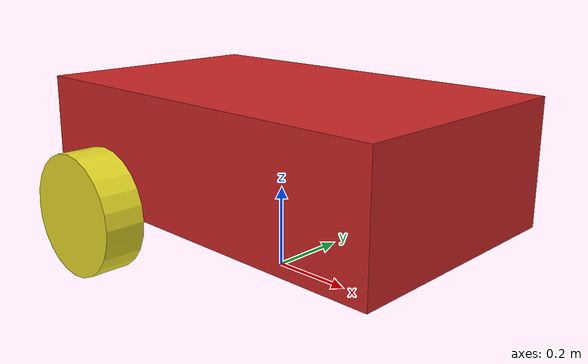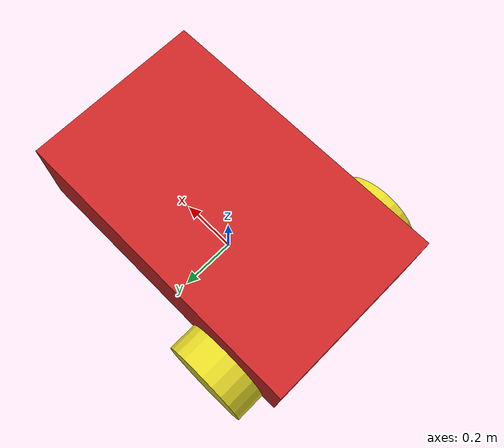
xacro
<?xml version="1.0"?>

<robot xmlns:xacro="http://www.ros.org/wiki/xacro" name="differential_drive_robot">

    <xacro:property  name="pi_const" value="3.14159265"/>

    <!-- Body Dimensions -->
    <xacro:property name="a" value="1"/>
    <xacro:property name="b" value="0.3"/>
    <xacro:property name="c" value="0.6"/>

    <!-- Wheel and Caster dimensions -->
    <!-- Wheel and Caster radius -->

    <xacro:property name="r" value="0.15"/>

    <!-- Wheel width -->
    <xacro:property name="d" value="0.1" />

    <xacro:property name="s1" value="${b/2+r}" />
    <xacro:property name="s2" value="${2*r}" />
    <xacro:property name="s3" value="${2*r}" />
    <xacro:property name="s4" value="${c/2+d/2}" />

    <!-- Mass and Inertia Properties -->
    <!-- Body Material density -->
    <xacro:property name="d1" value="2710.0" />
    <xacro:property name="d2" value="2710.0" />
    <xacro:property name="d3" value="2710.0" />

    <!-- Body mass, wheel mass and caster mass -->
    <!-- Body -->
    <xacro:property name="m1" value="${d1*a*b*c}" />
    <!-- Wheel -->
    <xacro:property name="m2" value="d2*pi_const*r*r*d" />
    <!-- Caster -->
    <xacro:property name="m3" value="${d3*(4.0/3.0)*pi_const*r*r*r}" />

    <!-- Moments of Inertia of the robot -->
    <xacro:property name="Ix_body" value="${(1.0/12.0)*m1*(b*b + c*c)}" />
    <xacro:property name="Iy_body" value="${(1.0/12.0)*m1*(a*a + c*c)}" />
    <xacro:property name="Iz_body" value="${(1.0/12.0)*m1*(a*a + b*b)}" />

    <!-- Wheel inertias (solid cylinder): axial (about wheel axis) and radial -->
    <xacro:property name="Iz_wheel" value="${0.5*m2*r*r}" />
    <xacro:property name="I_wheel" value="${(1.0/12.0)*m2*(3.0*r*r + d*d)}" />

    <!-- Caster moment of inertia -->
    <xacro:property name="I_caster" value="${(2.0/5.0)*m3*r*r}" />

    <!-- This Macro defines the complete inertial section of the robot body -->
    <!-- It is used later in the code -->
    <xacro:macro name="inertia_body">
        <inertial>
            <!-- Displacement and orientation of the center of mass frame of the link with respect to the parent frame-->
            <origin xyz="0.0 0.0 ${s1}" rpy="0.0 0.0 0.0"/>
            <mass value="${m1}"/>
            <inertia ixx="${Ix_body}" ixy="0.0" ixz="0.0" iyy="${Iy_body}" iyz="0.0" izz="${Iz_body}"/>
        </inertial>
    </xacro:macro>

    <!-- This Macro defines the complete inertial section of the wheel -->
    <!-- It is used later in the code -->
    <xacro:macro name="inertia_wheel">
        <inertial>
            <origin xyz="0.0 0.0 0.0" rpy="1.570795 0.0 0.0"/>
            <mass value="${m2}"/>
            <inertia ixx="${I_wheel}" ixy="0.0" ixz="0.0" iyy="${I_wheel}" iyz="0.0" izz="${Iz_wheel}"/>
        </inertial>
    </xacro:macro>

    <!-- This Macro defines the complete inertial section of the caster -->
    <!-- It is used later in the code -->
    <xacro:macro name="inertia_caster">
        <inertial>
            <origin xyz="0.0 0.0 0.0" rpy="0.0 0.0 0.0"/>
            <mass value="${m3}"/>
            <inertia ixx="${I_caster}" ixy="0.0" ixz="0.0" iyy="${I_caster}" iyz="0.0" izz="${I_caster}"/>
        </inertial>
    </xacro:macro>

    <!-- ############################ Include Additional Files ############################ -->

    <!-- Here we include the file that defines extra Gazebo options and motion control driver -->

    <xacro:include filename="$(find mobile_robot)/model/robot.gazebo" />

    <!-- AND NOW WE CAN DEFINE THE LINKS AND JOINTS -->

    <!-- START: Ficticious link of the robot -->
    <!-- Also a joint to connect this link to the body_link -->

    <link name="base_footprint"> </link>
    <joint name="body_link_joint" type="fixed">
        <parent link="base_footprint"/>
        <child link="body_link"/>
    </joint>

    <!-- The body link of the robot -->
    <link name="body_link">
        <visual>
            <geometry>
                <box size="${a} ${c} ${b}"/>
            </geometry>
            <origin xyz="0.0 0.0 ${s1}" rpy="0.0 0.0 0.0"/>
        </visual>

        <collision>
            <geometry>
                <box size="${a} ${c} ${b}"/>
            </geometry>
            <origin xyz="0.0 0.0 ${s1}" rpy="0.0 0.0 0.0"/>
        </collision>

        <xacro:inertia_body/>
    </link>

    <!-- Now the joint between the body and wheel_1_link -->

    <joint name="wheel1_joint" type="continuous">
        <parent link="body_link"/>
        <child link="wheel1_link"/>
        <origin xyz="${-s2} ${-s4} ${r}" rpy="0.0 0.0 0.0"/>
        <axis xyz="0.0 1 0.0"/>
        <limit effort="50000" velocity="10"/>
        <dynamics damping="1.0" friction="1.0"/>
    </joint>

    <!-- And now wheel1_link -->
    <link name="wheel1_link">
        <visual>
            <geometry>
                <cylinder radius="${r}" length="${d}"/>
            </geometry>
            <origin xyz="0.0 0.0 0.0" rpy="1.570795 0.0 0.0"/>
        </visual>

        <collision>
            <geometry>
                <cylinder radius="${r}" length="${d}"/>
            </geometry>
            <origin xyz="0.0 0.0 0.0" rpy="1.570795 0.0 0.0"/>
        </collision>

        <xacro:inertia_wheel/>
    </link>

    <!-- Next the Joint for the other wheel -->
    <joint name="wheel2_joint" type="continuous">
        <parent link="body_link"/>
        <child link="wheel2_link"/>
        <origin xyz="${-s2} ${s4} ${r}" rpy="0.0 0.0 0.0"/>
        <axis xyz="0.0 1 0.0"/>
        <limit effort="50000" velocity="10"/>
        <dynamics damping="1.0" friction="1.0"/>
    </joint>

    <!-- And now the wheel2_link definition -->

    <link name="wheel2_link">
        <visual>
            <geometry>
                <cylinder radius="${r}" length="${d}"/>
            </geometry>
            <origin xyz="0.0 0.0 0.0" rpy="1.570795 0.0 0.0"/>
        </visual>

        <collision>
            <geometry>
                <cylinder radius="${r}" length="${d}"/>
            </geometry>
            <origin xyz="0.0 0.0 0.0" rpy="1.570795 0.0 0.0"/>
        </collision>

        <xacro:inertia_caster/>
    </link>

</robot>
